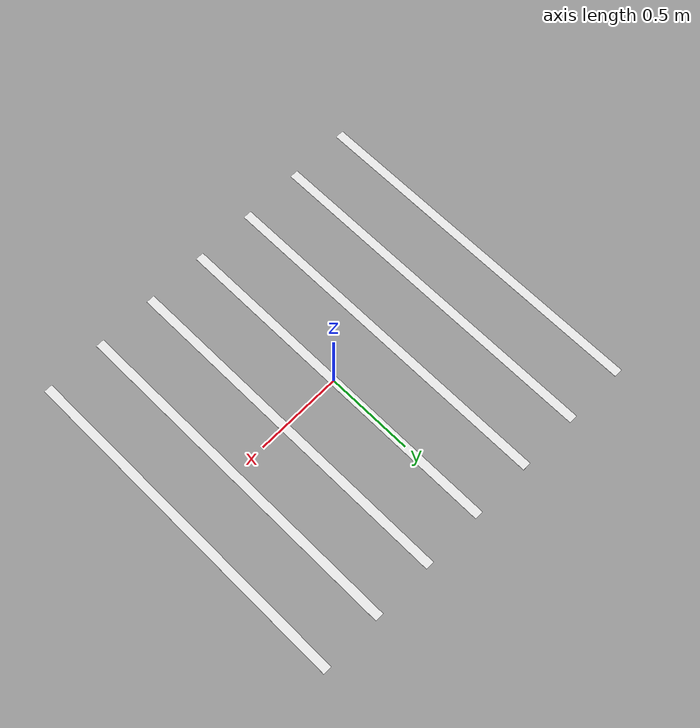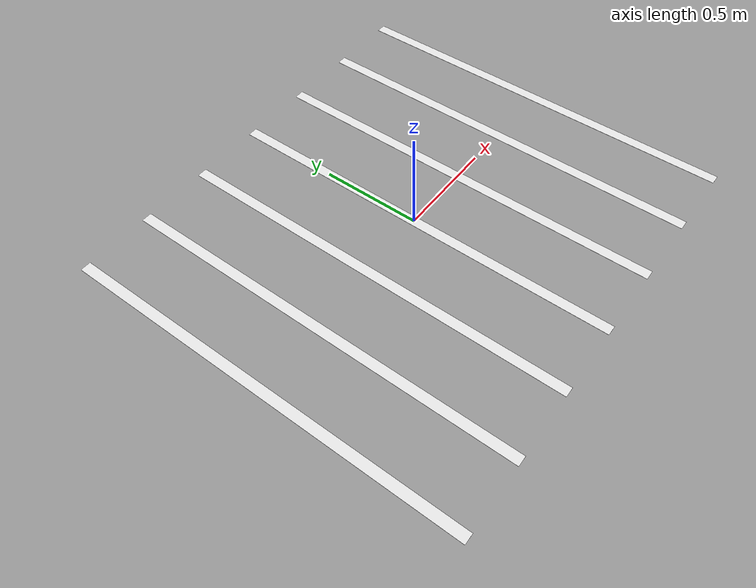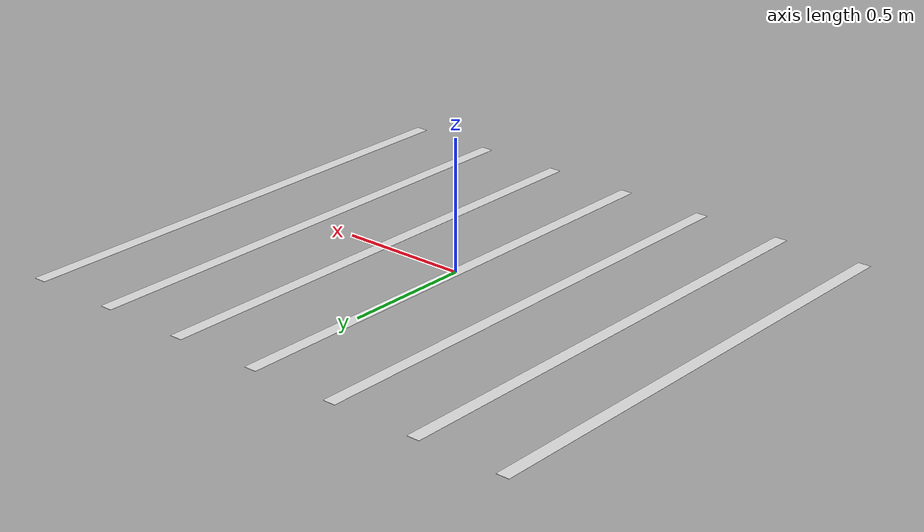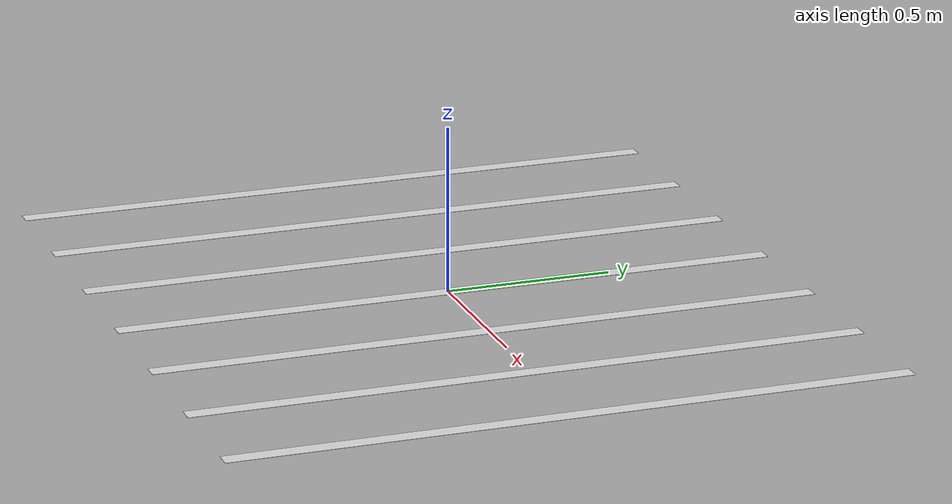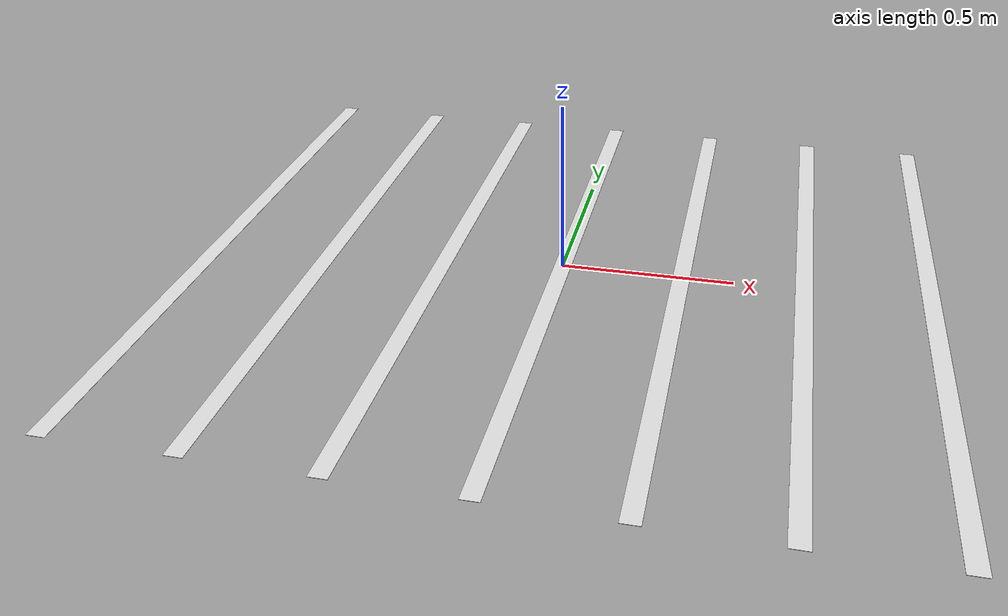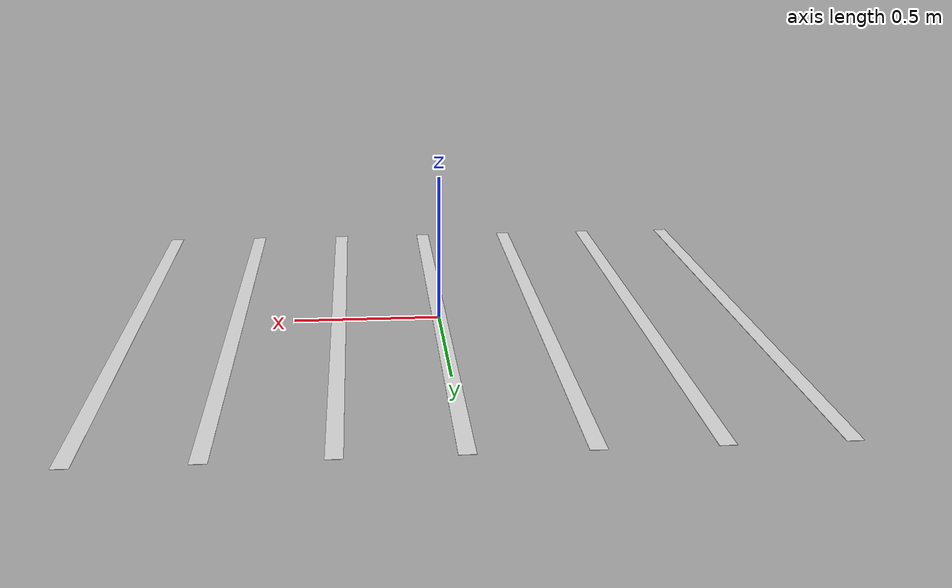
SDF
<?xml version='1.0'?>
<sdf version='1.6'>
  <model name='zebra_crossing_200cmx210cm'>
    <link name='link_0'>
      <inertial>
        <mass>1</mass>
        <inertia>
          <ixx>0.166667</ixx>
          <ixy>0</ixy>
          <ixz>0</ixz>
          <iyy>0.166667</iyy>
          <iyz>0</iyz>
          <izz>0.166667</izz>
        </inertia>
        <pose frame=''>0 0 0 0 -0 0</pose>
      </inertial>
      <pose frame=''>0 0 0 0 -0 0</pose>
      <gravity>1</gravity>
      <self_collide>0</self_collide>
      <kinematic>0</kinematic>
      <enable_wind>0</enable_wind>
      <visual name='ModelPreview_1::link_0::visual_6'>
        <pose frame=''>-1.05 0 0 0 -0 0</pose>
        <geometry>
          <box>
            <size>0.05 2 0.001</size>
          </box>
        </geometry>
        <material>
          <lighting>1</lighting>
          <script>
            <uri>file://media/materials/scripts/gazebo.material</uri>
            <name>Gazebo/White</name>
          </script>
        </material>
      </visual>
      <visual name='ModelPreview_1::link_0::visual_1'>
        <pose frame=''>0.35 0 0 0 -0 0</pose>
        <geometry>
          <box>
            <size>0.05 2 0.001</size>
          </box>
        </geometry>
        <material>
          <lighting>1</lighting>
          <script>
            <uri>file://media/materials/scripts/gazebo.material</uri>
            <name>Gazebo/White</name>
          </script>
        </material>
      </visual>
      <visual name='ModelPreview_1::link_0::visual_5'>
        <pose frame=''>-0.7 0 0 0 -0 0</pose>
        <geometry>
          <box>
            <size>0.05 2 0.001</size>
          </box>
        </geometry>
        <material>
          <lighting>1</lighting>
          <script>
            <uri>file://media/materials/scripts/gazebo.material</uri>
            <name>Gazebo/White</name>
          </script>
        </material>
      </visual>
      <visual name='ModelPreview_1::link_0::visual_3'>
        <pose frame=''>1.05 0 0 0 -0 0</pose>
        <geometry>
          <box>
            <size>0.05 2 0.001</size>
          </box>
        </geometry>
        <material>
          <lighting>1</lighting>
          <script>
            <uri>file://media/materials/scripts/gazebo.material</uri>
            <name>Gazebo/White</name>
          </script>
        </material>
      </visual>
      <visual name='ModelPreview_1::link_0::visual_2'>
        <pose frame=''>0.7 0 0 0 -0 0</pose>
        <geometry>
          <box>
            <size>0.05 2 0.001</size>
          </box>
        </geometry>
        <material>
          <lighting>1</lighting>
          <script>
            <uri>file://media/materials/scripts/gazebo.material</uri>
            <name>Gazebo/White</name>
          </script>
        </material>
      </visual>
      <visual name='visual'>
        <pose frame=''>0 0 0 0 -0 0</pose>
        <geometry>
          <box>
            <size>0.05 2 0.001</size>
          </box>
        </geometry>
        <material>
          <lighting>1</lighting>
          <script>
            <uri>file://media/materials/scripts/gazebo.material</uri>
            <name>Gazebo/White</name>
          </script>
        </material>
      </visual>
      <visual name='ModelPreview_1::link_0::visual_4'>
        <pose frame=''>-0.35 0 0 0 -0 0</pose>
        <geometry>
          <box>
            <size>0.05 2 0.001</size>
          </box>
        </geometry>
        <material>
          <lighting>1</lighting>
          <script>
            <uri>file://media/materials/scripts/gazebo.material</uri>
            <name>Gazebo/White</name>
          </script>
        </material>
      </visual>
      <collision name='collision_2'>
        <laser_retro>0</laser_retro>
        <max_contacts>10</max_contacts>
        <pose frame=''>0.7 0 0 0 -0 0</pose>
        <geometry>
          <box>
            <size>0.05 2 1e-05</size>
          </box>
        </geometry>
        <surface>
          <friction>
            <ode>
              <mu>1</mu>
              <mu2>1</mu2>
              <fdir1>0 0 0</fdir1>
              <slip1>0</slip1>
              <slip2>0</slip2>
            </ode>
            <torsional>
              <coefficient>1</coefficient>
              <patch_radius>0</patch_radius>
              <surface_radius>0</surface_radius>
              <use_patch_radius>1</use_patch_radius>
              <ode>
                <slip>0</slip>
              </ode>
            </torsional>
          </friction>
          <bounce>
            <restitution_coefficient>0</restitution_coefficient>
            <threshold>1e+06</threshold>
          </bounce>
          <contact>
            <collide_without_contact>0</collide_without_contact>
            <collide_without_contact_bitmask>1</collide_without_contact_bitmask>
            <collide_bitmask>1</collide_bitmask>
            <ode>
              <soft_cfm>0</soft_cfm>
              <soft_erp>0.2</soft_erp>
              <kp>1e+13</kp>
              <kd>1</kd>
              <max_vel>0.01</max_vel>
              <min_depth>0</min_depth>
            </ode>
            <bullet>
              <split_impulse>1</split_impulse>
              <split_impulse_penetration_threshold>-0.01</split_impulse_penetration_threshold>
              <soft_cfm>0</soft_cfm>
              <soft_erp>0.2</soft_erp>
              <kp>1e+13</kp>
              <kd>1</kd>
            </bullet>
          </contact>
        </surface>
      </collision>
      <collision name='collision_4'>
        <laser_retro>0</laser_retro>
        <max_contacts>10</max_contacts>
        <pose frame=''>-0.35 0 0 0 -0 0</pose>
        <geometry>
          <box>
            <size>0.05 2 1e-05</size>
          </box>
        </geometry>
        <surface>
          <friction>
            <ode>
              <mu>1</mu>
              <mu2>1</mu2>
              <fdir1>0 0 0</fdir1>
              <slip1>0</slip1>
              <slip2>0</slip2>
            </ode>
            <torsional>
              <coefficient>1</coefficient>
              <patch_radius>0</patch_radius>
              <surface_radius>0</surface_radius>
              <use_patch_radius>1</use_patch_radius>
              <ode>
                <slip>0</slip>
              </ode>
            </torsional>
          </friction>
          <bounce>
            <restitution_coefficient>0</restitution_coefficient>
            <threshold>1e+06</threshold>
          </bounce>
          <contact>
            <collide_without_contact>0</collide_without_contact>
            <collide_without_contact_bitmask>1</collide_without_contact_bitmask>
            <collide_bitmask>1</collide_bitmask>
            <ode>
              <soft_cfm>0</soft_cfm>
              <soft_erp>0.2</soft_erp>
              <kp>1e+13</kp>
              <kd>1</kd>
              <max_vel>0.01</max_vel>
              <min_depth>0</min_depth>
            </ode>
            <bullet>
              <split_impulse>1</split_impulse>
              <split_impulse_penetration_threshold>-0.01</split_impulse_penetration_threshold>
              <soft_cfm>0</soft_cfm>
              <soft_erp>0.2</soft_erp>
              <kp>1e+13</kp>
              <kd>1</kd>
            </bullet>
          </contact>
        </surface>
      </collision>
      <collision name='collision'>
        <laser_retro>0</laser_retro>
        <max_contacts>10</max_contacts>
        <pose frame=''>0 0 0 0 -0 0</pose>
        <geometry>
          <box>
            <size>0.05 2 1e-05</size>
          </box>
        </geometry>
        <surface>
          <friction>
            <ode>
              <mu>1</mu>
              <mu2>1</mu2>
              <fdir1>0 0 0</fdir1>
              <slip1>0</slip1>
              <slip2>0</slip2>
            </ode>
            <torsional>
              <coefficient>1</coefficient>
              <patch_radius>0</patch_radius>
              <surface_radius>0</surface_radius>
              <use_patch_radius>1</use_patch_radius>
              <ode>
                <slip>0</slip>
              </ode>
            </torsional>
          </friction>
          <bounce>
            <restitution_coefficient>0</restitution_coefficient>
            <threshold>1e+06</threshold>
          </bounce>
          <contact>
            <collide_without_contact>0</collide_without_contact>
            <collide_without_contact_bitmask>1</collide_without_contact_bitmask>
            <collide_bitmask>1</collide_bitmask>
            <ode>
              <soft_cfm>0</soft_cfm>
              <soft_erp>0.2</soft_erp>
              <kp>1e+13</kp>
              <kd>1</kd>
              <max_vel>0.01</max_vel>
              <min_depth>0</min_depth>
            </ode>
            <bullet>
              <split_impulse>1</split_impulse>
              <split_impulse_penetration_threshold>-0.01</split_impulse_penetration_threshold>
              <soft_cfm>0</soft_cfm>
              <soft_erp>0.2</soft_erp>
              <kp>1e+13</kp>
              <kd>1</kd>
            </bullet>
          </contact>
        </surface>
      </collision>
      <collision name='collision_5'>
        <laser_retro>0</laser_retro>
        <max_contacts>10</max_contacts>
        <pose frame=''>-0.7 0 0 0 -0 0</pose>
        <geometry>
          <box>
            <size>0.05 2 1e-05</size>
          </box>
        </geometry>
        <surface>
          <friction>
            <ode>
              <mu>1</mu>
              <mu2>1</mu2>
              <fdir1>0 0 0</fdir1>
              <slip1>0</slip1>
              <slip2>0</slip2>
            </ode>
            <torsional>
              <coefficient>1</coefficient>
              <patch_radius>0</patch_radius>
              <surface_radius>0</surface_radius>
              <use_patch_radius>1</use_patch_radius>
              <ode>
                <slip>0</slip>
              </ode>
            </torsional>
          </friction>
          <bounce>
            <restitution_coefficient>0</restitution_coefficient>
            <threshold>1e+06</threshold>
          </bounce>
          <contact>
            <collide_without_contact>0</collide_without_contact>
            <collide_without_contact_bitmask>1</collide_without_contact_bitmask>
            <collide_bitmask>1</collide_bitmask>
            <ode>
              <soft_cfm>0</soft_cfm>
              <soft_erp>0.2</soft_erp>
              <kp>1e+13</kp>
              <kd>1</kd>
              <max_vel>0.01</max_vel>
              <min_depth>0</min_depth>
            </ode>
            <bullet>
              <split_impulse>1</split_impulse>
              <split_impulse_penetration_threshold>-0.01</split_impulse_penetration_threshold>
              <soft_cfm>0</soft_cfm>
              <soft_erp>0.2</soft_erp>
              <kp>1e+13</kp>
              <kd>1</kd>
            </bullet>
          </contact>
        </surface>
      </collision>
      <collision name='collision_1'>
        <laser_retro>0</laser_retro>
        <max_contacts>10</max_contacts>
        <pose frame=''>0.35 0 0 0 -0 0</pose>
        <geometry>
          <box>
            <size>0.05 2 1e-05</size>
          </box>
        </geometry>
        <surface>
          <friction>
            <ode>
              <mu>1</mu>
              <mu2>1</mu2>
              <fdir1>0 0 0</fdir1>
              <slip1>0</slip1>
              <slip2>0</slip2>
            </ode>
            <torsional>
              <coefficient>1</coefficient>
              <patch_radius>0</patch_radius>
              <surface_radius>0</surface_radius>
              <use_patch_radius>1</use_patch_radius>
              <ode>
                <slip>0</slip>
              </ode>
            </torsional>
          </friction>
          <bounce>
            <restitution_coefficient>0</restitution_coefficient>
            <threshold>1e+06</threshold>
          </bounce>
          <contact>
            <collide_without_contact>0</collide_without_contact>
            <collide_without_contact_bitmask>1</collide_without_contact_bitmask>
            <collide_bitmask>1</collide_bitmask>
            <ode>
              <soft_cfm>0</soft_cfm>
              <soft_erp>0.2</soft_erp>
              <kp>1e+13</kp>
              <kd>1</kd>
              <max_vel>0.01</max_vel>
              <min_depth>0</min_depth>
            </ode>
            <bullet>
              <split_impulse>1</split_impulse>
              <split_impulse_penetration_threshold>-0.01</split_impulse_penetration_threshold>
              <soft_cfm>0</soft_cfm>
              <soft_erp>0.2</soft_erp>
              <kp>1e+13</kp>
              <kd>1</kd>
            </bullet>
          </contact>
        </surface>
      </collision>
      <collision name='collision_3'>
        <laser_retro>0</laser_retro>
        <max_contacts>10</max_contacts>
        <pose frame=''>1.05 0 0 0 -0 0</pose>
        <geometry>
          <box>
            <size>0.05 2 1e-05</size>
          </box>
        </geometry>
        <surface>
          <friction>
            <ode>
              <mu>1</mu>
              <mu2>1</mu2>
              <fdir1>0 0 0</fdir1>
              <slip1>0</slip1>
              <slip2>0</slip2>
            </ode>
            <torsional>
              <coefficient>1</coefficient>
              <patch_radius>0</patch_radius>
              <surface_radius>0</surface_radius>
              <use_patch_radius>1</use_patch_radius>
              <ode>
                <slip>0</slip>
              </ode>
            </torsional>
          </friction>
          <bounce>
            <restitution_coefficient>0</restitution_coefficient>
            <threshold>1e+06</threshold>
          </bounce>
          <contact>
            <collide_without_contact>0</collide_without_contact>
            <collide_without_contact_bitmask>1</collide_without_contact_bitmask>
            <collide_bitmask>1</collide_bitmask>
            <ode>
              <soft_cfm>0</soft_cfm>
              <soft_erp>0.2</soft_erp>
              <kp>1e+13</kp>
              <kd>1</kd>
              <max_vel>0.01</max_vel>
              <min_depth>0</min_depth>
            </ode>
            <bullet>
              <split_impulse>1</split_impulse>
              <split_impulse_penetration_threshold>-0.01</split_impulse_penetration_threshold>
              <soft_cfm>0</soft_cfm>
              <soft_erp>0.2</soft_erp>
              <kp>1e+13</kp>
              <kd>1</kd>
            </bullet>
          </contact>
        </surface>
      </collision>
      <collision name='collision_6'>
        <laser_retro>0</laser_retro>
        <max_contacts>10</max_contacts>
        <pose frame=''>-1.05 0 0 0 -0 0</pose>
        <geometry>
          <box>
            <size>0.05 2 1e-05</size>
          </box>
        </geometry>
        <surface>
          <friction>
            <ode>
              <mu>1</mu>
              <mu2>1</mu2>
              <fdir1>0 0 0</fdir1>
              <slip1>0</slip1>
              <slip2>0</slip2>
            </ode>
            <torsional>
              <coefficient>1</coefficient>
              <patch_radius>0</patch_radius>
              <surface_radius>0</surface_radius>
              <use_patch_radius>1</use_patch_radius>
              <ode>
                <slip>0</slip>
              </ode>
            </torsional>
          </friction>
          <bounce>
            <restitution_coefficient>0</restitution_coefficient>
            <threshold>1e+06</threshold>
          </bounce>
          <contact>
            <collide_without_contact>0</collide_without_contact>
            <collide_without_contact_bitmask>1</collide_without_contact_bitmask>
            <collide_bitmask>1</collide_bitmask>
            <ode>
              <soft_cfm>0</soft_cfm>
              <soft_erp>0.2</soft_erp>
              <kp>1e+13</kp>
              <kd>1</kd>
              <max_vel>0.01</max_vel>
              <min_depth>0</min_depth>
            </ode>
            <bullet>
              <split_impulse>1</split_impulse>
              <split_impulse_penetration_threshold>-0.01</split_impulse_penetration_threshold>
              <soft_cfm>0</soft_cfm>
              <soft_erp>0.2</soft_erp>
              <kp>1e+13</kp>
              <kd>1</kd>
            </bullet>
          </contact>
        </surface>
      </collision>
    </link>
    <static>1</static>
    <allow_auto_disable>1</allow_auto_disable>
  </model>
</sdf>
